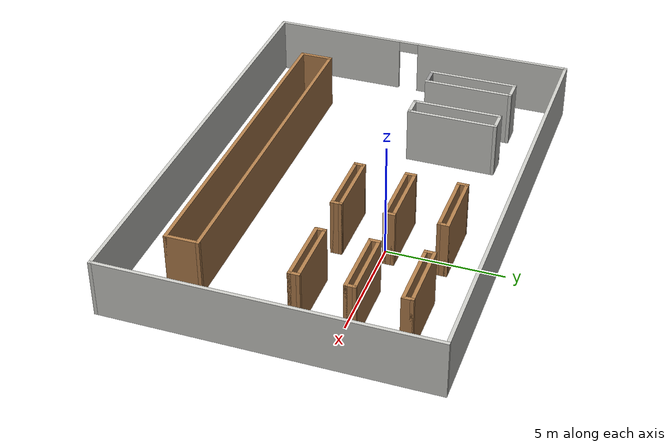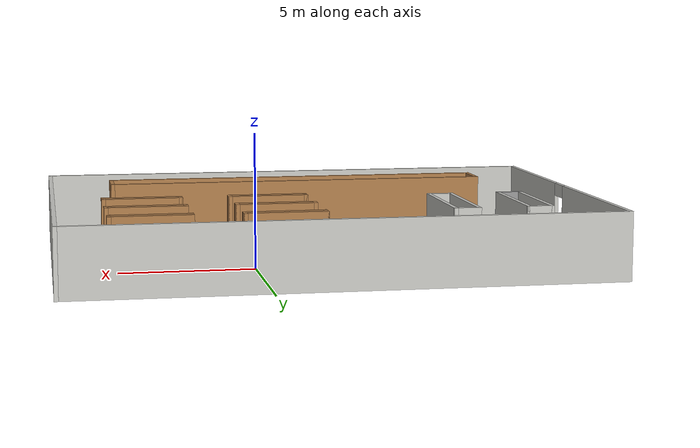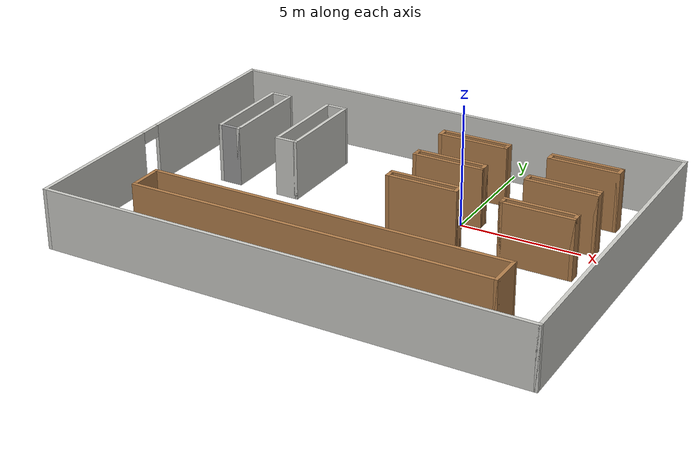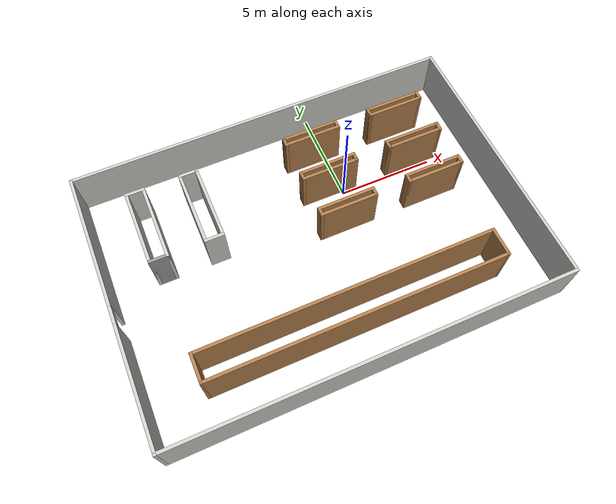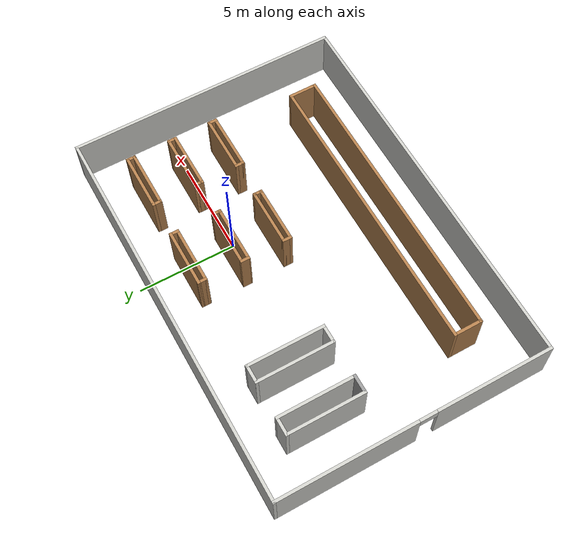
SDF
<?xml version='1.0'?>
<sdf version='1.7'>
  <model name='warehouse'>
    <pose>-2.665 -2.335 0 0 -0 0</pose>
    <link name='Wall_0'>
      <collision name='Wall_0_Collision'>
        <geometry>
          <box>
            <size>3 0.15 2.5</size>
          </box>
        </geometry>
        <pose>0 0 1.25 0 -0 0</pose>
      </collision>
      <visual name='Wall_0_Visual'>
        <pose>0 0 1.25 0 -0 0</pose>
        <geometry>
          <box>
            <size>3 0.15 2.5</size>
          </box>
        </geometry>
        <material>
          <script>
            <uri>file://media/materials/scripts/gazebo.material</uri>
            <name>Gazebo/Wood</name>
          </script>
          <ambient>1 1 1 1</ambient>
        </material>
        <meta>
          <layer>0</layer>
        </meta>
      </visual>
      <pose>1.95 0.675 0 0 -0 0</pose>
    </link>
    <link name='Wall_1'>
      <collision name='Wall_1_Collision'>
        <geometry>
          <box>
            <size>0.5 0.15 2.5</size>
          </box>
        </geometry>
        <pose>0 0 1.25 0 -0 0</pose>
      </collision>
      <visual name='Wall_1_Visual'>
        <pose>0 0 1.25 0 -0 0</pose>
        <geometry>
          <box>
            <size>0.5 0.15 2.5</size>
          </box>
        </geometry>
        <material>
          <script>
            <uri>file://media/materials/scripts/gazebo.material</uri>
            <name>Gazebo/Wood</name>
          </script>
          <ambient>1 1 1 1</ambient>
        </material>
        <meta>
          <layer>0</layer>
        </meta>
      </visual>
      <pose>3.375 0.5 0 0 -0 -1.5708</pose>
    </link>
    <link name='Wall_13'>
      <collision name='Wall_13_Collision'>
        <geometry>
          <box>
            <size>3 0.15 2.5</size>
          </box>
        </geometry>
        <pose>0 0 1.25 0 -0 0</pose>
      </collision>
      <visual name='Wall_13_Visual'>
        <pose>0 0 1.25 0 -0 0</pose>
        <geometry>
          <box>
            <size>3 0.15 2.5</size>
          </box>
        </geometry>
        <material>
          <script>
            <uri>file://media/materials/scripts/gazebo.material</uri>
            <name>Gazebo/Wood</name>
          </script>
          <ambient>1 1 1 1</ambient>
        </material>
        <meta>
          <layer>0</layer>
        </meta>
      </visual>
      <pose>1.95 2.525 0 0 -0 3.14159</pose>
    </link>
    <link name='Wall_14'>
      <collision name='Wall_14_Collision'>
        <geometry>
          <box>
            <size>0.5 0.15 2.5</size>
          </box>
        </geometry>
        <pose>0 0 1.25 0 -0 0</pose>
      </collision>
      <visual name='Wall_14_Visual'>
        <pose>0 0 1.25 0 -0 0</pose>
        <geometry>
          <box>
            <size>0.5 0.15 2.5</size>
          </box>
        </geometry>
        <material>
          <script>
            <uri>file://media/materials/scripts/gazebo.material</uri>
            <name>Gazebo/Wood</name>
          </script>
          <ambient>1 1 1 1</ambient>
        </material>
        <meta>
          <layer>0</layer>
        </meta>
      </visual>
      <pose>0.525 2.7 0 0 -0 1.5708</pose>
    </link>
    <link name='Wall_15'>
      <collision name='Wall_15_Collision'>
        <geometry>
          <box>
            <size>3 0.15 2.5</size>
          </box>
        </geometry>
        <pose>0 0 1.25 0 -0 0</pose>
      </collision>
      <visual name='Wall_15_Visual'>
        <pose>0 0 1.25 0 -0 0</pose>
        <geometry>
          <box>
            <size>3 0.15 2.5</size>
          </box>
        </geometry>
        <material>
          <script>
            <uri>file://media/materials/scripts/gazebo.material</uri>
            <name>Gazebo/Wood</name>
          </script>
          <ambient>1 1 1 1</ambient>
        </material>
        <meta>
          <layer>0</layer>
        </meta>
      </visual>
      <pose>1.95 2.875 0 0 -0 0</pose>
    </link>
    <link name='Wall_16'>
      <collision name='Wall_16_Collision'>
        <geometry>
          <box>
            <size>0.5 0.15 2.5</size>
          </box>
        </geometry>
        <pose>0 0 1.25 0 -0 0</pose>
      </collision>
      <visual name='Wall_16_Visual'>
        <pose>0 0 1.25 0 -0 0</pose>
        <geometry>
          <box>
            <size>0.5 0.15 2.5</size>
          </box>
        </geometry>
        <material>
          <script>
            <uri>file://media/materials/scripts/gazebo.material</uri>
            <name>Gazebo/Wood</name>
          </script>
          <ambient>1 1 1 1</ambient>
        </material>
        <meta>
          <layer>0</layer>
        </meta>
      </visual>
      <pose>3.375 2.7 0 0 -0 -1.5708</pose>
    </link>
    <link name='Wall_18'>
      <collision name='Wall_18_Collision'>
        <geometry>
          <box>
            <size>3 0.15 2.5</size>
          </box>
        </geometry>
        <pose>0 0 1.25 0 -0 0</pose>
      </collision>
      <visual name='Wall_18_Visual'>
        <pose>0 0 1.25 0 -0 0</pose>
        <geometry>
          <box>
            <size>3 0.15 2.5</size>
          </box>
        </geometry>
        <material>
          <script>
            <uri>file://media/materials/scripts/gazebo.material</uri>
            <name>Gazebo/Wood</name>
          </script>
          <ambient>1 1 1 1</ambient>
        </material>
        <meta>
          <layer>0</layer>
        </meta>
      </visual>
      <pose>6.65 2.525 0 0 -0 0</pose>
    </link>
    <link name='Wall_19'>
      <collision name='Wall_19_Collision'>
        <geometry>
          <box>
            <size>0.5 0.15 2.5</size>
          </box>
        </geometry>
        <pose>0 0 1.25 0 -0 0</pose>
      </collision>
      <visual name='Wall_19_Visual'>
        <pose>0 0 1.25 0 -0 0</pose>
        <geometry>
          <box>
            <size>0.5 0.15 2.5</size>
          </box>
        </geometry>
        <material>
          <script>
            <uri>file://media/materials/scripts/gazebo.material</uri>
            <name>Gazebo/Wood</name>
          </script>
          <ambient>1 1 1 1</ambient>
        </material>
        <meta>
          <layer>0</layer>
        </meta>
      </visual>
      <pose>8.075 2.7 0 0 -0 1.5708</pose>
    </link>
    <link name='Wall_2'>
      <collision name='Wall_2_Collision'>
        <geometry>
          <box>
            <size>3 0.15 2.5</size>
          </box>
        </geometry>
        <pose>0 0 1.25 0 -0 0</pose>
      </collision>
      <visual name='Wall_2_Visual'>
        <pose>0 0 1.25 0 -0 0</pose>
        <geometry>
          <box>
            <size>3 0.15 2.5</size>
          </box>
        </geometry>
        <material>
          <script>
            <uri>file://media/materials/scripts/gazebo.material</uri>
            <name>Gazebo/Wood</name>
          </script>
          <ambient>1 1 1 1</ambient>
        </material>
        <meta>
          <layer>0</layer>
        </meta>
      </visual>
      <pose>1.95 0.325 0 0 -0 3.14159</pose>
    </link>
    <link name='Wall_20'>
      <collision name='Wall_20_Collision'>
        <geometry>
          <box>
            <size>3 0.15 2.5</size>
          </box>
        </geometry>
        <pose>0 0 1.25 0 -0 0</pose>
      </collision>
      <visual name='Wall_20_Visual'>
        <pose>0 0 1.25 0 -0 0</pose>
        <geometry>
          <box>
            <size>3 0.15 2.5</size>
          </box>
        </geometry>
        <material>
          <script>
            <uri>file://media/materials/scripts/gazebo.material</uri>
            <name>Gazebo/Wood</name>
          </script>
          <ambient>1 1 1 1</ambient>
        </material>
        <meta>
          <layer>0</layer>
        </meta>
      </visual>
      <pose>6.65 2.875 0 0 -0 3.14159</pose>
    </link>
    <link name='Wall_21'>
      <collision name='Wall_21_Collision'>
        <geometry>
          <box>
            <size>0.5 0.15 2.5</size>
          </box>
        </geometry>
        <pose>0 0 1.25 0 -0 0</pose>
      </collision>
      <visual name='Wall_21_Visual'>
        <pose>0 0 1.25 0 -0 0</pose>
        <geometry>
          <box>
            <size>0.5 0.15 2.5</size>
          </box>
        </geometry>
        <material>
          <script>
            <uri>file://media/materials/scripts/gazebo.material</uri>
            <name>Gazebo/Wood</name>
          </script>
          <ambient>1 1 1 1</ambient>
        </material>
        <meta>
          <layer>0</layer>
        </meta>
      </visual>
      <pose>5.225 2.7 0 0 -0 -1.5708</pose>
    </link>
    <link name='Wall_24'>
      <collision name='Wall_24_Collision'>
        <geometry>
          <box>
            <size>3 0.15 2.5</size>
          </box>
        </geometry>
        <pose>0 0 1.25 0 -0 0</pose>
      </collision>
      <visual name='Wall_24_Visual'>
        <pose>0 0 1.25 0 -0 0</pose>
        <geometry>
          <box>
            <size>3 0.15 2.5</size>
          </box>
        </geometry>
        <material>
          <script>
            <uri>file://media/materials/scripts/gazebo.material</uri>
            <name>Gazebo/Wood</name>
          </script>
          <ambient>1 1 1 1</ambient>
        </material>
        <meta>
          <layer>0</layer>
        </meta>
      </visual>
      <pose>1.95 4.725 0 0 -0 3.14159</pose>
    </link>
    <link name='Wall_25'>
      <collision name='Wall_25_Collision'>
        <geometry>
          <box>
            <size>0.5 0.15 2.5</size>
          </box>
        </geometry>
        <pose>0 0 1.25 0 -0 0</pose>
      </collision>
      <visual name='Wall_25_Visual'>
        <pose>0 0 1.25 0 -0 0</pose>
        <geometry>
          <box>
            <size>0.5 0.15 2.5</size>
          </box>
        </geometry>
        <material>
          <script>
            <uri>file://media/materials/scripts/gazebo.material</uri>
            <name>Gazebo/Wood</name>
          </script>
          <ambient>1 1 1 1</ambient>
        </material>
        <meta>
          <layer>0</layer>
        </meta>
      </visual>
      <pose>0.525 4.9 0 0 -0 1.5708</pose>
    </link>
    <link name='Wall_26'>
      <collision name='Wall_26_Collision'>
        <geometry>
          <box>
            <size>3 0.15 2.5</size>
          </box>
        </geometry>
        <pose>0 0 1.25 0 -0 0</pose>
      </collision>
      <visual name='Wall_26_Visual'>
        <pose>0 0 1.25 0 -0 0</pose>
        <geometry>
          <box>
            <size>3 0.15 2.5</size>
          </box>
        </geometry>
        <material>
          <script>
            <uri>file://media/materials/scripts/gazebo.material</uri>
            <name>Gazebo/Wood</name>
          </script>
          <ambient>1 1 1 1</ambient>
        </material>
        <meta>
          <layer>0</layer>
        </meta>
      </visual>
      <pose>1.95 5.075 0 0 -0 0</pose>
    </link>
    <link name='Wall_27'>
      <collision name='Wall_27_Collision'>
        <geometry>
          <box>
            <size>0.5 0.15 2.5</size>
          </box>
        </geometry>
        <pose>0 0 1.25 0 -0 0</pose>
      </collision>
      <visual name='Wall_27_Visual'>
        <pose>0 0 1.25 0 -0 0</pose>
        <geometry>
          <box>
            <size>0.5 0.15 2.5</size>
          </box>
        </geometry>
        <material>
          <script>
            <uri>file://media/materials/scripts/gazebo.material</uri>
            <name>Gazebo/Wood</name>
          </script>
          <ambient>1 1 1 1</ambient>
        </material>
        <meta>
          <layer>0</layer>
        </meta>
      </visual>
      <pose>3.375 4.9 0 0 -0 -1.5708</pose>
    </link>
    <link name='Wall_29'>
      <collision name='Wall_29_Collision'>
        <geometry>
          <box>
            <size>3 0.15 2.5</size>
          </box>
        </geometry>
        <pose>0 0 1.25 0 -0 0</pose>
      </collision>
      <visual name='Wall_29_Visual'>
        <pose>0 0 1.25 0 -0 0</pose>
        <geometry>
          <box>
            <size>3 0.15 2.5</size>
          </box>
        </geometry>
        <material>
          <script>
            <uri>file://media/materials/scripts/gazebo.material</uri>
            <name>Gazebo/Wood</name>
          </script>
          <ambient>1 1 1 1</ambient>
        </material>
        <meta>
          <layer>0</layer>
        </meta>
      </visual>
      <pose>6.65 4.725 0 0 -0 0</pose>
    </link>
    <link name='Wall_3'>
      <collision name='Wall_3_Collision'>
        <geometry>
          <box>
            <size>0.5 0.15 2.5</size>
          </box>
        </geometry>
        <pose>0 0 1.25 0 -0 0</pose>
      </collision>
      <visual name='Wall_3_Visual'>
        <pose>0 0 1.25 0 -0 0</pose>
        <geometry>
          <box>
            <size>0.5 0.15 2.5</size>
          </box>
        </geometry>
        <material>
          <script>
            <uri>file://media/materials/scripts/gazebo.material</uri>
            <name>Gazebo/Wood</name>
          </script>
          <ambient>1 1 1 1</ambient>
        </material>
        <meta>
          <layer>0</layer>
        </meta>
      </visual>
      <pose>0.525 0.5 0 0 -0 1.5708</pose>
    </link>
    <link name='Wall_30'>
      <collision name='Wall_30_Collision'>
        <geometry>
          <box>
            <size>0.5 0.15 2.5</size>
          </box>
        </geometry>
        <pose>0 0 1.25 0 -0 0</pose>
      </collision>
      <visual name='Wall_30_Visual'>
        <pose>0 0 1.25 0 -0 0</pose>
        <geometry>
          <box>
            <size>0.5 0.15 2.5</size>
          </box>
        </geometry>
        <material>
          <script>
            <uri>file://media/materials/scripts/gazebo.material</uri>
            <name>Gazebo/Wood</name>
          </script>
          <ambient>1 1 1 1</ambient>
        </material>
        <meta>
          <layer>0</layer>
        </meta>
      </visual>
      <pose>8.075 4.9 0 0 -0 1.5708</pose>
    </link>
    <link name='Wall_31'>
      <collision name='Wall_31_Collision'>
        <geometry>
          <box>
            <size>3 0.15 2.5</size>
          </box>
        </geometry>
        <pose>0 0 1.25 0 -0 0</pose>
      </collision>
      <visual name='Wall_31_Visual'>
        <pose>0 0 1.25 0 -0 0</pose>
        <geometry>
          <box>
            <size>3 0.15 2.5</size>
          </box>
        </geometry>
        <material>
          <script>
            <uri>file://media/materials/scripts/gazebo.material</uri>
            <name>Gazebo/Wood</name>
          </script>
          <ambient>1 1 1 1</ambient>
        </material>
        <meta>
          <layer>0</layer>
        </meta>
      </visual>
      <pose>6.65 5.075 0 0 -0 3.14159</pose>
    </link>
    <link name='Wall_32'>
      <collision name='Wall_32_Collision'>
        <geometry>
          <box>
            <size>0.5 0.15 2.5</size>
          </box>
        </geometry>
        <pose>0 0 1.25 0 -0 0</pose>
      </collision>
      <visual name='Wall_32_Visual'>
        <pose>0 0 1.25 0 -0 0</pose>
        <geometry>
          <box>
            <size>0.5 0.15 2.5</size>
          </box>
        </geometry>
        <material>
          <script>
            <uri>file://media/materials/scripts/gazebo.material</uri>
            <name>Gazebo/Wood</name>
          </script>
          <ambient>1 1 1 1</ambient>
        </material>
        <meta>
          <layer>0</layer>
        </meta>
      </visual>
      <pose>5.225 4.9 0 0 -0 -1.5708</pose>
    </link>
    <link name='Wall_38'>
      <collision name='Wall_38_Collision'>
        <geometry>
          <box>
            <size>20 0.15 2.5</size>
          </box>
        </geometry>
        <pose>0 0 1.25 0 -0 0</pose>
      </collision>
      <visual name='Wall_38_Visual'>
        <pose>0 0 1.25 0 -0 0</pose>
        <geometry>
          <box>
            <size>20 0.15 2.5</size>
          </box>
        </geometry>
        <material>
          <script>
            <uri>file://media/materials/scripts/gazebo.material</uri>
            <name>Gazebo/CeilingTiled</name>
          </script>
          <ambient>1 1 1 1</ambient>
        </material>
        <meta>
          <layer>0</layer>
        </meta>
      </visual>
      <pose>0 6.925 0 0 -0 3.14159</pose>
    </link>
    <link name='Wall_39'>
      <pose>-9.925 0 0 0 -0 -1.5708</pose>
      <visual name='Wall_39_Visual_0'>
        <pose>-3.43914 0 1.25 0 -0 0</pose>
        <geometry>
          <box>
            <size>7.12171 0.15 2.5</size>
          </box>
        </geometry>
        <material>
          <script>
            <uri>file://media/materials/scripts/gazebo.material</uri>
            <name>Gazebo/CeilingTiled</name>
          </script>
          <ambient>1 1 1 1</ambient>
        </material>
        <meta>
          <layer>0</layer>
        </meta>
      </visual>
      <collision name='Wall_39_Collision_0'>
        <geometry>
          <box>
            <size>7.12171 0.15 2.5</size>
          </box>
        </geometry>
        <pose>-3.43914 0 1.25 0 -0 0</pose>
      </collision>
      <visual name='Wall_39_Visual_1'>
        <pose>4.01086 0 1.25 0 -0 0</pose>
        <geometry>
          <box>
            <size>5.97829 0.15 2.5</size>
          </box>
        </geometry>
        <material>
          <script>
            <uri>file://media/materials/scripts/gazebo.material</uri>
            <name>Gazebo/CeilingTiled</name>
          </script>
          <ambient>1 1 1 1</ambient>
        </material>
        <meta>
          <layer>0</layer>
        </meta>
      </visual>
      <collision name='Wall_39_Collision_1'>
        <geometry>
          <box>
            <size>5.97829 0.15 2.5</size>
          </box>
        </geometry>
        <pose>4.01086 0 1.25 0 -0 0</pose>
      </collision>
      <visual name='Wall_39_Visual_2'>
        <pose>0.571709 0 2.25 0 -0 0</pose>
        <geometry>
          <box>
            <size>0.9 0.15 0.5</size>
          </box>
        </geometry>
        <material>
          <script>
            <uri>file://media/materials/scripts/gazebo.material</uri>
            <name>Gazebo/CeilingTiled</name>
          </script>
          <ambient>1 1 1 1</ambient>
        </material>
        <meta>
          <layer>0</layer>
        </meta>
      </visual>
      <collision name='Wall_39_Collision_2'>
        <geometry>
          <box>
            <size>0.9 0.15 0.5</size>
          </box>
        </geometry>
        <pose>0.571709 0 2.25 0 -0 0</pose>
      </collision>
    </link>
    <link name='Wall_40'>
      <collision name='Wall_40_Collision'>
        <geometry>
          <box>
            <size>20 0.15 2.5</size>
          </box>
        </geometry>
        <pose>0 0 1.25 0 -0 0</pose>
      </collision>
      <visual name='Wall_40_Visual'>
        <pose>0 0 1.25 0 -0 0</pose>
        <geometry>
          <box>
            <size>20 0.15 2.5</size>
          </box>
        </geometry>
        <material>
          <script>
            <uri>file://media/materials/scripts/gazebo.material</uri>
            <name>Gazebo/CeilingTiled</name>
          </script>
          <ambient>1 1 1 1</ambient>
        </material>
        <meta>
          <layer>0</layer>
        </meta>
      </visual>
      <pose>0 -6.925 0 0 -0 0</pose>
    </link>
    <link name='Wall_42'>
      <collision name='Wall_42_Collision'>
        <geometry>
          <box>
            <size>14 0.15 2.5</size>
          </box>
        </geometry>
        <pose>0 0 1.25 0 -0 0</pose>
      </collision>
      <visual name='Wall_42_Visual'>
        <pose>0 0 1.25 0 -0 0</pose>
        <geometry>
          <box>
            <size>14 0.15 2.5</size>
          </box>
        </geometry>
        <material>
          <script>
            <uri>file://media/materials/scripts/gazebo.material</uri>
            <name>Gazebo/CeilingTiled</name>
          </script>
          <ambient>1 1 1 1</ambient>
        </material>
        <meta>
          <layer>0</layer>
        </meta>
      </visual>
      <pose>9.925 0 0 0 -0 -1.5708</pose>
    </link>
    <link name='Wall_45'>
      <collision name='Wall_45_Collision'>
        <geometry>
          <box>
            <size>4 0.15 2.5</size>
          </box>
        </geometry>
        <pose>0 0 1.25 0 -0 0</pose>
      </collision>
      <visual name='Wall_45_Visual'>
        <pose>0 0 1.25 0 -0 0</pose>
        <geometry>
          <box>
            <size>4 0.15 2.5</size>
          </box>
        </geometry>
        <material>
          <script>
            <uri>file://media/materials/scripts/gazebo.material</uri>
            <name>Gazebo/CeilingTiled</name>
          </script>
          <ambient>1 1 1 1</ambient>
        </material>
        <meta>
          <layer>0</layer>
        </meta>
      </visual>
      <pose>-7.67666 3.15011 0 0 -0 -1.5708</pose>
    </link>
    <link name='Wall_46'>
      <collision name='Wall_46_Collision'>
        <geometry>
          <box>
            <size>1 0.15 2.5</size>
          </box>
        </geometry>
        <pose>0 0 1.25 0 -0 0</pose>
      </collision>
      <visual name='Wall_46_Visual'>
        <pose>0 0 1.25 0 -0 0</pose>
        <geometry>
          <box>
            <size>1 0.15 2.5</size>
          </box>
        </geometry>
        <material>
          <script>
            <uri>file://media/materials/scripts/gazebo.material</uri>
            <name>Gazebo/Grey</name>
          </script>
          <ambient>1 1 1 1</ambient>
        </material>
        <meta>
          <layer>0</layer>
        </meta>
      </visual>
      <pose>-7.25166 1.22511 0 0 -0 0</pose>
    </link>
    <link name='Wall_47'>
      <collision name='Wall_47_Collision'>
        <geometry>
          <box>
            <size>4 0.15 2.5</size>
          </box>
        </geometry>
        <pose>0 0 1.25 0 -0 0</pose>
      </collision>
      <visual name='Wall_47_Visual'>
        <pose>0 0 1.25 0 -0 0</pose>
        <geometry>
          <box>
            <size>4 0.15 2.5</size>
          </box>
        </geometry>
        <material>
          <script>
            <uri>file://media/materials/scripts/gazebo.material</uri>
            <name>Gazebo/CeilingTiled</name>
          </script>
          <ambient>1 1 1 1</ambient>
        </material>
        <meta>
          <layer>0</layer>
        </meta>
      </visual>
      <pose>-6.82666 3.15011 0 0 -0 1.5708</pose>
    </link>
    <link name='Wall_48'>
      <collision name='Wall_48_Collision'>
        <geometry>
          <box>
            <size>1 0.15 2.5</size>
          </box>
        </geometry>
        <pose>0 0 1.25 0 -0 0</pose>
      </collision>
      <visual name='Wall_48_Visual'>
        <pose>0 0 1.25 0 -0 0</pose>
        <geometry>
          <box>
            <size>1 0.15 2.5</size>
          </box>
        </geometry>
        <material>
          <script>
            <uri>file://media/materials/scripts/gazebo.material</uri>
            <name>Gazebo/CeilingTiled</name>
          </script>
          <ambient>1 1 1 1</ambient>
        </material>
        <meta>
          <layer>0</layer>
        </meta>
      </visual>
      <pose>-7.25166 5.07511 0 0 -0 3.14159</pose>
    </link>
    <link name='Wall_51'>
      <collision name='Wall_51_Collision'>
        <geometry>
          <box>
            <size>4 0.15 2.5</size>
          </box>
        </geometry>
        <pose>0 0 1.25 0 -0 0</pose>
      </collision>
      <visual name='Wall_51_Visual'>
        <pose>0 0 1.25 0 -0 0</pose>
        <geometry>
          <box>
            <size>4 0.15 2.5</size>
          </box>
        </geometry>
        <material>
          <script>
            <uri>file://media/materials/scripts/gazebo.material</uri>
            <name>Gazebo/CeilingTiled</name>
          </script>
          <ambient>1 1 1 1</ambient>
        </material>
        <meta>
          <layer>0</layer>
        </meta>
      </visual>
      <pose>-4.97666 3.15011 0 0 -0 -1.5708</pose>
    </link>
    <link name='Wall_52'>
      <collision name='Wall_52_Collision'>
        <geometry>
          <box>
            <size>1 0.15 2.5</size>
          </box>
        </geometry>
        <pose>0 0 1.25 0 -0 0</pose>
      </collision>
      <visual name='Wall_52_Visual'>
        <pose>0 0 1.25 0 -0 0</pose>
        <geometry>
          <box>
            <size>1 0.15 2.5</size>
          </box>
        </geometry>
        <material>
          <script>
            <uri>file://media/materials/scripts/gazebo.material</uri>
            <name>Gazebo/CeilingTiled</name>
          </script>
          <ambient>1 1 1 1</ambient>
        </material>
        <meta>
          <layer>0</layer>
        </meta>
      </visual>
      <pose>-4.55166 1.22511 0 0 -0 0</pose>
    </link>
    <link name='Wall_53'>
      <collision name='Wall_53_Collision'>
        <geometry>
          <box>
            <size>4 0.15 2.5</size>
          </box>
        </geometry>
        <pose>0 0 1.25 0 -0 0</pose>
      </collision>
      <visual name='Wall_53_Visual'>
        <pose>0 0 1.25 0 -0 0</pose>
        <geometry>
          <box>
            <size>4 0.15 2.5</size>
          </box>
        </geometry>
        <material>
          <script>
            <uri>file://media/materials/scripts/gazebo.material</uri>
            <name>Gazebo/CeilingTiled</name>
          </script>
          <ambient>1 1 1 1</ambient>
        </material>
        <meta>
          <layer>0</layer>
        </meta>
      </visual>
      <pose>-4.12666 3.15011 0 0 -0 1.5708</pose>
    </link>
    <link name='Wall_54'>
      <collision name='Wall_54_Collision'>
        <geometry>
          <box>
            <size>1 0.15 2.5</size>
          </box>
        </geometry>
        <pose>0 0 1.25 0 -0 0</pose>
      </collision>
      <visual name='Wall_54_Visual'>
        <pose>0 0 1.25 0 -0 0</pose>
        <geometry>
          <box>
            <size>1 0.15 2.5</size>
          </box>
        </geometry>
        <material>
          <script>
            <uri>file://media/materials/scripts/gazebo.material</uri>
            <name>Gazebo/CeilingTiled</name>
          </script>
          <ambient>1 1 1 1</ambient>
        </material>
        <meta>
          <layer>0</layer>
        </meta>
      </visual>
      <pose>-4.55166 5.07511 0 0 -0 3.14159</pose>
    </link>
    <link name='Wall_56'>
      <collision name='Wall_56_Collision'>
        <geometry>
          <box>
            <size>15 0.15 2.5</size>
          </box>
        </geometry>
        <pose>0 0 1.25 0 -0 0</pose>
      </collision>
      <visual name='Wall_56_Visual'>
        <pose>0 0 1.25 0 -0 0</pose>
        <geometry>
          <box>
            <size>15 0.15 2.5</size>
          </box>
        </geometry>
        <material>
          <script>
            <uri>file://media/materials/scripts/gazebo.material</uri>
            <name>Gazebo/Wood</name>
          </script>
          <ambient>1 1 1 1</ambient>
        </material>
        <meta>
          <layer>0</layer>
        </meta>
      </visual>
      <pose>0.099031 -4.97165 0 0 -0 0</pose>
    </link>
    <link name='Wall_57'>
      <collision name='Wall_57_Collision'>
        <geometry>
          <box>
            <size>1.5 0.15 2.5</size>
          </box>
        </geometry>
        <pose>0 0 1.25 0 -0 0</pose>
      </collision>
      <visual name='Wall_57_Visual'>
        <pose>0 0 1.25 0 -0 0</pose>
        <geometry>
          <box>
            <size>1.5 0.15 2.5</size>
          </box>
        </geometry>
        <material>
          <script>
            <uri>file://media/materials/scripts/gazebo.material</uri>
            <name>Gazebo/Wood</name>
          </script>
          <ambient>1 1 1 1</ambient>
        </material>
        <meta>
          <layer>0</layer>
        </meta>
      </visual>
      <pose>7.52403 -4.29665 0 0 -0 1.5708</pose>
    </link>
    <link name='Wall_6'>
      <collision name='Wall_6_Collision'>
        <geometry>
          <box>
            <size>0.5 0.15 2.5</size>
          </box>
        </geometry>
        <pose>0 0 1.25 0 -0 0</pose>
      </collision>
      <visual name='Wall_6_Visual'>
        <pose>0 0 1.25 0 -0 0</pose>
        <geometry>
          <box>
            <size>0.5 0.15 2.5</size>
          </box>
        </geometry>
        <material>
          <script>
            <uri>file://media/materials/scripts/gazebo.material</uri>
            <name>Gazebo/Wood</name>
          </script>
          <ambient>1 1 1 1</ambient>
        </material>
        <meta>
          <layer>0</layer>
        </meta>
      </visual>
      <pose>5.225 0.5 0 0 -0 -1.5708</pose>
    </link>
    <link name='Wall_60'>
      <collision name='Wall_60_Collision'>
        <geometry>
          <box>
            <size>15 0.15 2.5</size>
          </box>
        </geometry>
        <pose>0 0 1.25 0 -0 0</pose>
      </collision>
      <visual name='Wall_60_Visual'>
        <pose>0 0 1.25 0 -0 0</pose>
        <geometry>
          <box>
            <size>15 0.15 2.5</size>
          </box>
        </geometry>
        <material>
          <script>
            <uri>file://media/materials/scripts/gazebo.material</uri>
            <name>Gazebo/Wood</name>
          </script>
          <ambient>1 1 1 1</ambient>
        </material>
        <meta>
          <layer>0</layer>
        </meta>
      </visual>
      <pose>0.099031 -3.62165 0 0 -0 3.14159</pose>
    </link>
    <link name='Wall_61'>
      <collision name='Wall_61_Collision'>
        <geometry>
          <box>
            <size>1.5 0.15 2.5</size>
          </box>
        </geometry>
        <pose>0 0 1.25 0 -0 0</pose>
      </collision>
      <visual name='Wall_61_Visual'>
        <pose>0 0 1.25 0 -0 0</pose>
        <geometry>
          <box>
            <size>1.5 0.15 2.5</size>
          </box>
        </geometry>
        <material>
          <script>
            <uri>file://media/materials/scripts/gazebo.material</uri>
            <name>Gazebo/Wood</name>
          </script>
          <ambient>1 1 1 1</ambient>
        </material>
        <meta>
          <layer>0</layer>
        </meta>
      </visual>
      <pose>-7.32597 -4.29665 0 0 -0 -1.5708</pose>
    </link>
    <link name='Wall_7'>
      <collision name='Wall_7_Collision'>
        <geometry>
          <box>
            <size>3 0.15 2.5</size>
          </box>
        </geometry>
        <pose>0 0 1.25 0 -0 0</pose>
      </collision>
      <visual name='Wall_7_Visual'>
        <pose>0 0 1.25 0 -0 0</pose>
        <geometry>
          <box>
            <size>3 0.15 2.5</size>
          </box>
        </geometry>
        <material>
          <script>
            <uri>file://media/materials/scripts/gazebo.material</uri>
            <name>Gazebo/Wood</name>
          </script>
          <ambient>1 1 1 1</ambient>
        </material>
        <meta>
          <layer>0</layer>
        </meta>
      </visual>
      <pose>6.65 0.325 0 0 -0 0</pose>
    </link>
    <link name='Wall_8'>
      <collision name='Wall_8_Collision'>
        <geometry>
          <box>
            <size>0.5 0.15 2.5</size>
          </box>
        </geometry>
        <pose>0 0 1.25 0 -0 0</pose>
      </collision>
      <visual name='Wall_8_Visual'>
        <pose>0 0 1.25 0 -0 0</pose>
        <geometry>
          <box>
            <size>0.5 0.15 2.5</size>
          </box>
        </geometry>
        <material>
          <script>
            <uri>file://media/materials/scripts/gazebo.material</uri>
            <name>Gazebo/Wood</name>
          </script>
          <ambient>1 1 1 1</ambient>
        </material>
        <meta>
          <layer>0</layer>
        </meta>
      </visual>
      <pose>8.075 0.5 0 0 -0 1.5708</pose>
    </link>
    <link name='Wall_9'>
      <collision name='Wall_9_Collision'>
        <geometry>
          <box>
            <size>3 0.15 2.5</size>
          </box>
        </geometry>
        <pose>0 0 1.25 0 -0 0</pose>
      </collision>
      <visual name='Wall_9_Visual'>
        <pose>0 0 1.25 0 -0 0</pose>
        <geometry>
          <box>
            <size>3 0.15 2.5</size>
          </box>
        </geometry>
        <material>
          <script>
            <uri>file://media/materials/scripts/gazebo.material</uri>
            <name>Gazebo/Wood</name>
          </script>
          <ambient>1 1 1 1</ambient>
        </material>
        <meta>
          <layer>0</layer>
        </meta>
      </visual>
      <pose>6.65 0.675 0 0 -0 3.14159</pose>
    </link>
    <static>1</static>
  </model>
</sdf>
